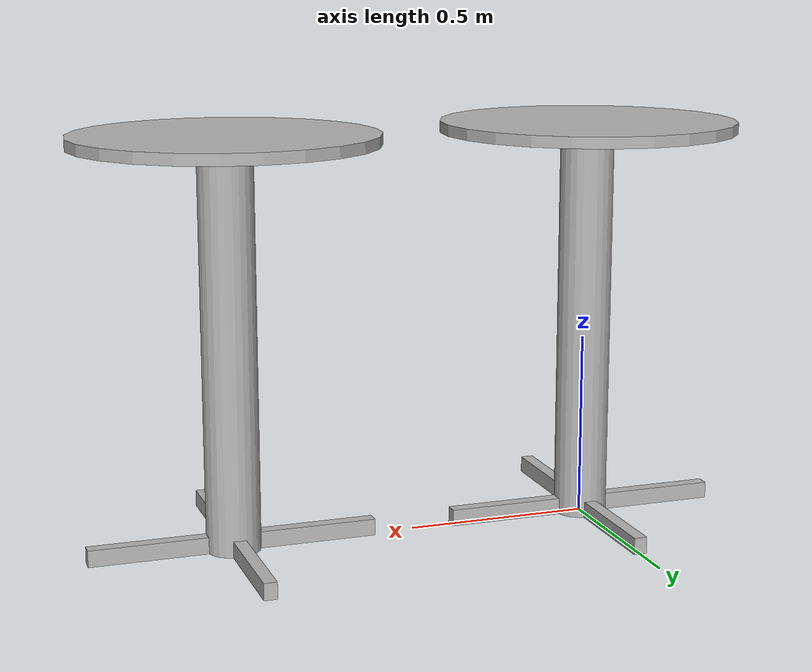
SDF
<?xml version="1.0"?>
<sdf version="1.6">
  <model name="rgo2018/bar">
    <link name="1_link">
      <collision name="1_col">
        <geometry>
          <cylinder>
            <length>0.03</length>
            <radius>0.4</radius>
          </cylinder>
        </geometry>
      </collision>
      <visual name="1_vis">
        <geometry>
          <cylinder>
            <length>0.03</length>
            <radius>0.4</radius>
          </cylinder>
        </geometry>
      </visual>
      <pose>0 0 1.085 0 0 0</pose>
    </link>
    <link name="2_link">
      <collision name="2_col">
        <geometry>
          <cylinder>
            <length>1.08</length>
            <radius>0.0725</radius>
          </cylinder>
        </geometry>
      </collision>
      <visual name="2_vis">
        <geometry>
          <cylinder>
            <length>1.08</length>
            <radius>0.0725</radius>
          </cylinder>
        </geometry>
      </visual>
      <pose>0 0 0.54 0 0 0</pose>
    </link>
    <link name="3_link">
      <collision name="3_col">
        <geometry>
          <box>
            <size>0.775 0.035 0.045</size>
          </box>
        </geometry>
      </collision>
      <visual name="3_vis">
        <geometry>
          <box>
            <size>0.775 0.035 0.045</size>
          </box>
        </geometry>
      </visual>
      <pose>0 0 0.0225 0 0 0</pose>
    </link>
    <link name="4_link">
      <collision name="4_col">
        <geometry>
          <box>
            <size>0.035 0.775 0.045</size>
          </box>
        </geometry>
      </collision>
      <visual name="4_vis">
        <geometry>
          <box>
            <size>0.035 0.775 0.045</size>
          </box>
        </geometry>
      </visual>
      <pose>0 0 0.0225 0 0 0</pose>
    </link>
    <link name="5_link">
      <collision name="5_col">
        <geometry>
          <cylinder>
            <length>0.03</length>
            <radius>0.4</radius>
          </cylinder>
        </geometry>
      </collision>
      <visual name="5_vis">
        <geometry>
          <cylinder>
            <length>0.03</length>
            <radius>0.4</radius>
          </cylinder>
        </geometry>
      </visual>
      <pose>1 0 1.085 0 0 0</pose>
    </link>
    <link name="6_link">
      <collision name="6_col">
        <geometry>
          <cylinder>
            <length>1.08</length>
            <radius>0.0725</radius>
          </cylinder>
        </geometry>
      </collision>
      <visual name="6_vis">
        <geometry>
          <cylinder>
            <length>1.08</length>
            <radius>0.0725</radius>
          </cylinder>
        </geometry>
      </visual>
      <pose>1 0 0.54 0 0 0</pose>
    </link>
    <link name="7_link">
      <collision name="7_col">
        <geometry>
          <box>
            <size>0.775 0.035 0.045</size>
          </box>
        </geometry>
      </collision>
      <visual name="7_vis">
        <geometry>
          <box>
            <size>0.775 0.035 0.045</size>
          </box>
        </geometry>
      </visual>
      <pose>1 0 0.0225 0 0 0</pose>
    </link>
    <link name="8_link">
      <collision name="8_col">
        <geometry>
          <box>
            <size>0.035 0.775 0.045</size>
          </box>
        </geometry>
      </collision>
      <visual name="8_vis">
        <geometry>
          <box>
            <size>0.035 0.775 0.045</size>
          </box>
        </geometry>
      </visual>
      <pose>1 0 0.0225 0 0 0</pose>
    </link>
    <link name="in_front_of">
      <virtual_volume name="in_front_of_vv">
        <geometry>
          <box>
            <size>1.6 0.25 0.01</size>
          </box>
        </geometry>
        <pose>0.5 0.775 0.005 0 0 0</pose>
      </virtual_volume>
    </link>
    <link name="on_top_of">
      <virtual_volume name="on_top_of_vv">
        <geometry>
          <box>
            <size>1.52 0.52 0.15</size>
          </box>
        </geometry>
        <pose>0.5 0.0 1.195 0 0 0</pose>
      </virtual_volume>
    </link>
    <static>true</static>
  </model>
</sdf>
